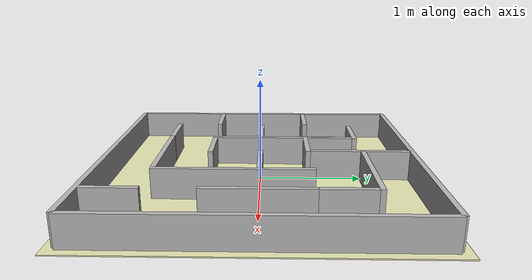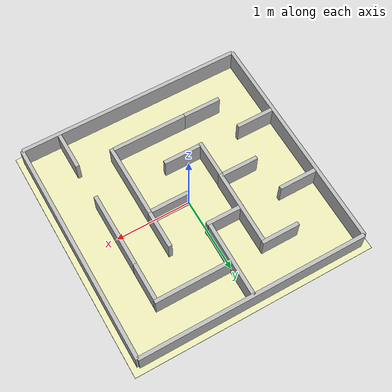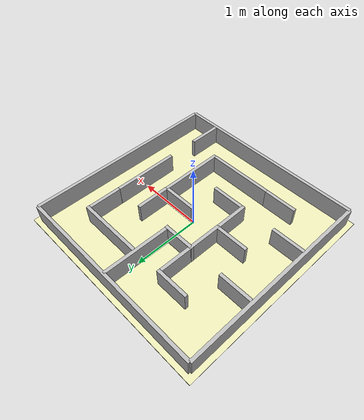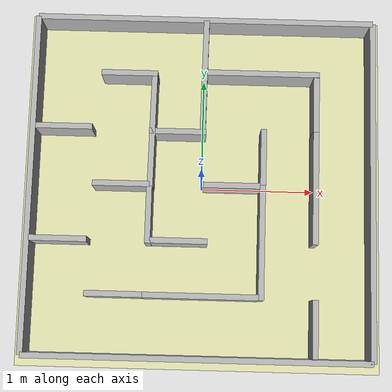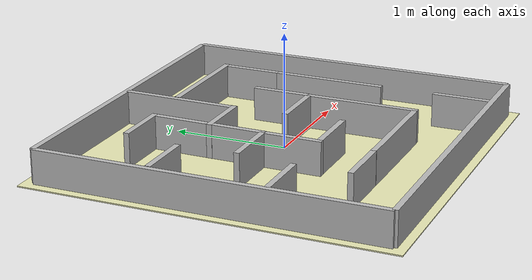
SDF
<sdf version='1.10'>
  <world name='robot_maze'>
    <gravity>0 0 -9.8000000000000007</gravity>
    <magnetic_field>5.5644999999999998e-06 2.2875799999999999e-05 -4.2388400000000002e-05</magnetic_field>
    <atmosphere type='adiabatic'/>
    <physics type='ode'>
      <max_step_size>0.001</max_step_size>
      <real_time_factor>1</real_time_factor>
      <real_time_update_rate>1000</real_time_update_rate>
    </physics>
     <plugin
      filename="gz-sim-physics-system"
      name="gz::sim::systems::Physics">
    </plugin>
    <plugin
      filename="gz-sim-user-commands-system"
      name="gz::sim::systems::UserCommands">
    </plugin>
    <plugin
      filename="gz-sim-scene-broadcaster-system"
      name="gz::sim::systems::SceneBroadcaster">
    </plugin>
    <plugin
      filename="gz-sim-sensors-system"
      name="gz::sim::systems::Sensors">
      <render_engine>ogre2</render_engine>
    </plugin>
    <plugin
      filename="gz-sim-imu-system"
      name="gz::sim::systems::Imu">
    </plugin>
    <scene>
      <ambient>0.400000006 0.400000006 0.400000006 1</ambient>
      <background>0.699999988 0.699999988 0.699999988 1</background>
      <shadows>true</shadows>
    </scene>
    <model name='ground'>
      <static>true</static>
      <pose>0 0 0 0 0 0</pose>
      <link name='link'>
        <collision name='c'>
          <geometry>
            <box>
              <size>3.2000000000000002 3.2000000000000002 0.01</size>
            </box>
          </geometry>
          <surface>
            <friction>
              <ode/>
            </friction>
            <bounce/>
            <contact/>
          </surface>
        </collision>
        <visual name='v'>
          <geometry>
            <box>
              <size>3.2000000000000002 3.2000000000000002 0.01</size>
            </box>
          </geometry>
          <material>
            <diffuse>0.899999976 0.899999976 0.699999988 1</diffuse>
          </material>
        </visual>
        <pose>0 0 0 0 0 0</pose>
        <inertial>
          <pose>0 0 0 0 0 0</pose>
          <mass>1</mass>
          <inertia>
            <ixx>1</ixx>
            <ixy>0</ixy>
            <ixz>0</ixz>
            <iyy>1</iyy>
            <iyz>0</iyz>
            <izz>1</izz>
          </inertia>
        </inertial>
        <enable_wind>false</enable_wind>
      </link>
      <self_collide>false</self_collide>
    </model>
    <model name='border_top'>
      <static>true</static>
      <pose>0 1.5 0.14999999999999999 0 0 0</pose>
      <link name='l'>
        <collision name='c'>
          <geometry>
            <box>
              <size>3 0.050000000000000003 0.29999999999999999</size>
            </box>
          </geometry>
          <surface>
            <friction>
              <ode/>
            </friction>
            <bounce/>
            <contact/>
          </surface>
        </collision>
        <visual name='v'>
          <geometry>
            <box>
              <size>3 0.050000000000000003 0.29999999999999999</size>
            </box>
          </geometry>
        </visual>
        <pose>0 0 0 0 0 0</pose>
        <inertial>
          <pose>0 0 0 0 0 0</pose>
          <mass>1</mass>
          <inertia>
            <ixx>1</ixx>
            <ixy>0</ixy>
            <ixz>0</ixz>
            <iyy>1</iyy>
            <iyz>0</iyz>
            <izz>1</izz>
          </inertia>
        </inertial>
        <enable_wind>false</enable_wind>
      </link>
      <self_collide>false</self_collide>
    </model>
    <model name='border_bottom'>
      <static>true</static>
      <pose>0 -1.5 0.14999999999999999 0 0 0</pose>
      <link name='l'>
        <collision name='c'>
          <geometry>
            <box>
              <size>3 0.050000000000000003 0.29999999999999999</size>
            </box>
          </geometry>
          <surface>
            <friction>
              <ode/>
            </friction>
            <bounce/>
            <contact/>
          </surface>
        </collision>
        <visual name='v'>
          <geometry>
            <box>
              <size>3 0.050000000000000003 0.29999999999999999</size>
            </box>
          </geometry>
        </visual>
        <pose>0 0 0 0 0 0</pose>
        <inertial>
          <pose>0 0 0 0 0 0</pose>
          <mass>1</mass>
          <inertia>
            <ixx>1</ixx>
            <ixy>0</ixy>
            <ixz>0</ixz>
            <iyy>1</iyy>
            <iyz>0</iyz>
            <izz>1</izz>
          </inertia>
        </inertial>
        <enable_wind>false</enable_wind>
      </link>
      <self_collide>false</self_collide>
    </model>
    <model name='border_left'>
      <static>true</static>
      <pose>-1.5 0 0.14999999999999999 0 0 0</pose>
      <link name='l'>
        <collision name='c'>
          <geometry>
            <box>
              <size>0.050000000000000003 3 0.29999999999999999</size>
            </box>
          </geometry>
          <surface>
            <friction>
              <ode/>
            </friction>
            <bounce/>
            <contact/>
          </surface>
        </collision>
        <visual name='v'>
          <geometry>
            <box>
              <size>0.050000000000000003 3 0.29999999999999999</size>
            </box>
          </geometry>
        </visual>
        <pose>0 0 0 0 0 0</pose>
        <inertial>
          <pose>0 0 0 0 0 0</pose>
          <mass>1</mass>
          <inertia>
            <ixx>1</ixx>
            <ixy>0</ixy>
            <ixz>0</ixz>
            <iyy>1</iyy>
            <iyz>0</iyz>
            <izz>1</izz>
          </inertia>
        </inertial>
        <enable_wind>false</enable_wind>
      </link>
      <self_collide>false</self_collide>
    </model>
    <model name='border_right'>
      <static>true</static>
      <pose>1.5 0 0.14999999999999999 0 0 0</pose>
      <link name='l'>
        <collision name='c'>
          <geometry>
            <box>
              <size>0.050000000000000003 3 0.29999999999999999</size>
            </box>
          </geometry>
          <surface>
            <friction>
              <ode/>
            </friction>
            <bounce/>
            <contact/>
          </surface>
        </collision>
        <visual name='v'>
          <geometry>
            <box>
              <size>0.050000000000000003 3 0.29999999999999999</size>
            </box>
          </geometry>
        </visual>
        <pose>0 0 0 0 0 0</pose>
        <inertial>
          <pose>0 0 0 0 0 0</pose>
          <mass>1</mass>
          <inertia>
            <ixx>1</ixx>
            <ixy>0</ixy>
            <ixz>0</ixz>
            <iyy>1</iyy>
            <iyz>0</iyz>
            <izz>1</izz>
          </inertia>
        </inertial>
        <enable_wind>false</enable_wind>
      </link>
      <self_collide>false</self_collide>
    </model>
    <model name='thick_h_row1_1'>
      <static>true</static>
      <pose>-0.44387555122375488 0.47204753756523132 0.15000000596046448 0 0 1.5601799914994563</pose>
      <link name='l'>
        <collision name='c'>
          <geometry>
            <box>
              <size>1 0.050000000000000003 0.29999999999999999</size>
            </box>
          </geometry>
          <surface>
            <friction>
              <ode/>
            </friction>
            <bounce/>
            <contact/>
          </surface>
        </collision>
        <visual name='v'>
          <geometry>
            <box>
              <size>1 0.050000000000000003 0.29999999999999999</size>
            </box>
          </geometry>
        </visual>
        <pose>0 0 0 0 0 0</pose>
        <inertial>
          <pose>0 0 0 0 0 0</pose>
          <mass>1</mass>
          <inertia>
            <ixx>1</ixx>
            <ixy>0</ixy>
            <ixz>0</ixz>
            <iyy>1</iyy>
            <iyz>0</iyz>
            <izz>1</izz>
          </inertia>
        </inertial>
        <enable_wind>false</enable_wind>
      </link>
      <self_collide>false</self_collide>
    </model>
    <model name='thick_h_row2_1'>
      <static>true</static>
      <pose>-1.2252000570297241 0.49515840411186218 0.15272299945354462 0 0 0</pose>
      <link name='l'>
        <collision name='c'>
          <geometry>
            <box>
              <size>0.5 0.050000000000000003 0.29999999999999999</size>
            </box>
          </geometry>
          <surface>
            <friction>
              <ode/>
            </friction>
            <bounce/>
            <contact/>
          </surface>
        </collision>
        <visual name='v'>
          <geometry>
            <box>
              <size>0.5 0.050000000000000003 0.29999999999999999</size>
            </box>
          </geometry>
        </visual>
        <pose>0 0 0 0 0 0</pose>
        <inertial>
          <pose>0 0 0 0 0 0</pose>
          <mass>1</mass>
          <inertia>
            <ixx>1</ixx>
            <ixy>0</ixy>
            <ixz>0</ixz>
            <iyy>1</iyy>
            <iyz>0</iyz>
            <izz>1</izz>
          </inertia>
        </inertial>
        <enable_wind>false</enable_wind>
      </link>
      <self_collide>false</self_collide>
    </model>
    <model name='thick_h_row2_2'>
      <static>true</static>
      <pose>0.26507300138473511 0 0.15000000596046448 0 0 0</pose>
      <link name='l'>
        <collision name='c'>
          <geometry>
            <box>
              <size>0.5 0.050000000000000003 0.29999999999999999</size>
            </box>
          </geometry>
          <surface>
            <friction>
              <ode/>
            </friction>
            <bounce/>
            <contact/>
          </surface>
        </collision>
        <visual name='v'>
          <geometry>
            <box>
              <size>0.5 0.050000000000000003 0.29999999999999999</size>
            </box>
          </geometry>
        </visual>
        <pose>0 0 0 0 0 0</pose>
        <inertial>
          <pose>0 0 0 0 0 0</pose>
          <mass>1</mass>
          <inertia>
            <ixx>1</ixx>
            <ixy>0</ixy>
            <ixz>0</ixz>
            <iyy>1</iyy>
            <iyz>0</iyz>
            <izz>1</izz>
          </inertia>
        </inertial>
        <enable_wind>false</enable_wind>
      </link>
      <self_collide>false</self_collide>
    </model>
    <model name='thick_h_row2_3'>
      <static>true</static>
      <pose>0.52709227800369263 1.0151799917221069 0.15212300419807434 0 0 0</pose>
      <link name='l'>
        <collision name='c'>
          <geometry>
            <box>
              <size>1 0.050000000000000003 0.29999999999999999</size>
            </box>
          </geometry>
          <surface>
            <friction>
              <ode/>
            </friction>
            <bounce/>
            <contact/>
          </surface>
        </collision>
        <visual name='v'>
          <geometry>
            <box>
              <size>1 0.050000000000000003 0.29999999999999999</size>
            </box>
          </geometry>
        </visual>
        <pose>0 0 0 0 0 0</pose>
        <inertial>
          <pose>0 0 0 0 0 0</pose>
          <mass>1</mass>
          <inertia>
            <ixx>1</ixx>
            <ixy>0</ixy>
            <ixz>0</ixz>
            <iyy>1</iyy>
            <iyz>0</iyz>
            <izz>1</izz>
          </inertia>
        </inertial>
        <enable_wind>false</enable_wind>
      </link>
      <self_collide>false</self_collide>
    </model>
    <model name='thick_h_row3_1'>
      <static>true</static>
      <pose>-1.2310700416564941 -0.50015544891357422 0.15000000596046448 0 0 0</pose>
      <link name='l'>
        <collision name='c'>
          <geometry>
            <box>
              <size>0.5 0.050000000000000003 0.29999999999999999</size>
            </box>
          </geometry>
          <surface>
            <friction>
              <ode/>
            </friction>
            <bounce/>
            <contact/>
          </surface>
        </collision>
        <visual name='v'>
          <geometry>
            <box>
              <size>0.5 0.050000000000000003 0.29999999999999999</size>
            </box>
          </geometry>
        </visual>
        <pose>0 0 0 0 0 0</pose>
        <inertial>
          <pose>0 0 0 0 0 0</pose>
          <mass>1</mass>
          <inertia>
            <ixx>1</ixx>
            <ixy>0</ixy>
            <ixz>0</ixz>
            <iyy>1</iyy>
            <iyz>0</iyz>
            <izz>1</izz>
          </inertia>
        </inertial>
        <enable_wind>false</enable_wind>
      </link>
      <self_collide>false</self_collide>
    </model>
    <model name='thick_h_row3_2'>
      <static>true</static>
      <pose>-0.73154598474502563 -0.96555465459823608 0.15000000596046448 0 0 0</pose>
      <link name='l'>
        <collision name='c'>
          <geometry>
            <box>
              <size>0.5 0.050000000000000003 0.29999999999999999</size>
            </box>
          </geometry>
          <surface>
            <friction>
              <ode/>
            </friction>
            <bounce/>
            <contact/>
          </surface>
        </collision>
        <visual name='v'>
          <geometry>
            <box>
              <size>0.5 0.050000000000000003 0.29999999999999999</size>
            </box>
          </geometry>
        </visual>
        <pose>0 0 0 0 0 0</pose>
        <inertial>
          <pose>0 0 0 0 0 0</pose>
          <mass>1</mass>
          <inertia>
            <ixx>1</ixx>
            <ixy>0</ixy>
            <ixz>0</ixz>
            <iyy>1</iyy>
            <iyz>0</iyz>
            <izz>1</izz>
          </inertia>
        </inertial>
        <enable_wind>false</enable_wind>
      </link>
      <self_collide>false</self_collide>
    </model>
    <model name='thick_h_row3_3'>
      <static>true</static>
      <pose>0.015292800031602383 -0.9667743444442749 0.15000000596046448 0 0 0</pose>
      <link name='l'>
        <collision name='c'>
          <geometry>
            <box>
              <size>1 0.050000000000000003 0.29999999999999999</size>
            </box>
          </geometry>
          <surface>
            <friction>
              <ode/>
            </friction>
            <bounce/>
            <contact/>
          </surface>
        </collision>
        <visual name='v'>
          <geometry>
            <box>
              <size>1 0.050000000000000003 0.29999999999999999</size>
            </box>
          </geometry>
        </visual>
        <pose>0 0 0 0 0 0</pose>
        <inertial>
          <pose>0 0 0 0 0 0</pose>
          <mass>1</mass>
          <inertia>
            <ixx>1</ixx>
            <ixy>0</ixy>
            <ixz>0</ixz>
            <iyy>1</iyy>
            <iyz>0</iyz>
            <izz>1</izz>
          </inertia>
        </inertial>
        <enable_wind>false</enable_wind>
      </link>
      <self_collide>false</self_collide>
    </model>
    <model name='thick_v_col1_1'>
      <static>true</static>
      <pose>1.0040348768234253 -1.2235627174377441 0.15000000596046448 0 0 1.5708000357176291</pose>
      <link name='l'>
        <collision name='c'>
          <geometry>
            <box>
              <size>0.5 0.050000000000000003 0.29999999999999999</size>
            </box>
          </geometry>
          <surface>
            <friction>
              <ode/>
            </friction>
            <bounce/>
            <contact/>
          </surface>
        </collision>
        <visual name='v'>
          <geometry>
            <box>
              <size>0.5 0.050000000000000003 0.29999999999999999</size>
            </box>
          </geometry>
        </visual>
        <pose>0 0 0 0 0 0</pose>
        <inertial>
          <pose>0 0 0 0 0 0</pose>
          <mass>1</mass>
          <inertia>
            <ixx>1</ixx>
            <ixy>0</ixy>
            <ixz>0</ixz>
            <iyy>1</iyy>
            <iyz>0</iyz>
            <izz>1</izz>
          </inertia>
        </inertial>
        <enable_wind>false</enable_wind>
      </link>
      <self_collide>false</self_collide>
    </model>
    <model name='thick_v_col4_2'>
      <static>true</static>
      <pose>0.53704899549484253 -0.48850589990615845 0.14808499813079834 0 0 1.5708000357176291</pose>
      <link name='l'>
        <collision name='c'>
          <geometry>
            <box>
              <size>1 0.050000000000000003 0.29999999999999999</size>
            </box>
          </geometry>
          <surface>
            <friction>
              <ode/>
            </friction>
            <bounce/>
            <contact/>
          </surface>
        </collision>
        <visual name='v'>
          <geometry>
            <box>
              <size>1 0.050000000000000003 0.29999999999999999</size>
            </box>
          </geometry>
        </visual>
        <pose>0 0 0 0 0 0</pose>
        <inertial>
          <pose>0 0 0 0 0 0</pose>
          <mass>1</mass>
          <inertia>
            <ixx>1</ixx>
            <ixy>0</ixy>
            <ixz>0</ixz>
            <iyy>1</iyy>
            <iyz>0</iyz>
            <izz>1</izz>
          </inertia>
        </inertial>
        <enable_wind>false</enable_wind>
      </link>
      <self_collide>false</self_collide>
    </model>
    <model name='thick_v_col5_1'>
      <static>true</static>
      <pose>1 0 0.14999999999999999 0 0 1.5708000000000009</pose>
      <link name='l'>
        <collision name='c'>
          <geometry>
            <box>
              <size>1 0.050000000000000003 0.29999999999999999</size>
            </box>
          </geometry>
          <surface>
            <friction>
              <ode/>
            </friction>
            <bounce/>
            <contact/>
          </surface>
        </collision>
        <visual name='v'>
          <geometry>
            <box>
              <size>1 0.050000000000000003 0.29999999999999999</size>
            </box>
          </geometry>
        </visual>
        <pose>0 0 0 0 0 0</pose>
        <inertial>
          <pose>0 0 0 0 0 0</pose>
          <mass>1</mass>
          <inertia>
            <ixx>1</ixx>
            <ixy>0</ixy>
            <ixz>0</ixz>
            <iyy>1</iyy>
            <iyz>0</iyz>
            <izz>1</izz>
          </inertia>
        </inertial>
        <enable_wind>false</enable_wind>
      </link>
      <self_collide>false</self_collide>
    </model>
    <model name='thick_v_col1_1_1'>
      <static>true</static>
      <pose>1.0008899622520571 0.74581676387092877 0.15000000596046448 0 0 1.5708000357176291</pose>
      <link name='l'>
        <collision name='c'>
          <geometry>
            <box>
              <size>0.5 0.050000000000000003 0.29999999999999999</size>
            </box>
          </geometry>
          <surface>
            <friction>
              <ode/>
            </friction>
            <bounce/>
            <contact/>
          </surface>
        </collision>
        <visual name='v'>
          <geometry>
            <box>
              <size>0.5 0.050000000000000003 0.29999999999999999</size>
            </box>
          </geometry>
        </visual>
        <pose>0 0 0 0 0 0</pose>
        <inertial>
          <pose>0 0 0 0 0 0</pose>
          <mass>1</mass>
          <inertia>
            <ixx>1</ixx>
            <ixy>0</ixy>
            <ixz>0</ixz>
            <iyy>1</iyy>
            <iyz>0</iyz>
            <izz>1</izz>
          </inertia>
        </inertial>
        <enable_wind>false</enable_wind>
      </link>
      <self_collide>false</self_collide>
    </model>
    <model name='thick_h_row1_1_1'>
      <static>true</static>
      <pose>0.0051415308339127774 0.99547731607604806 0.15000000596046448 0 0 1.5601799914994563</pose>
      <link name='l'>
        <collision name='c'>
          <geometry>
            <box>
              <size>1 0.050000000000000003 0.29999999999999999</size>
            </box>
          </geometry>
          <surface>
            <friction>
              <ode/>
            </friction>
            <bounce/>
            <contact/>
          </surface>
        </collision>
        <visual name='v'>
          <geometry>
            <box>
              <size>1 0.050000000000000003 0.29999999999999999</size>
            </box>
          </geometry>
        </visual>
        <pose>0 0 0 0 0 0</pose>
        <inertial>
          <pose>0 0 0 0 0 0</pose>
          <mass>1</mass>
          <inertia>
            <ixx>1</ixx>
            <ixy>0</ixy>
            <ixz>0</ixz>
            <iyy>1</iyy>
            <iyz>0</iyz>
            <izz>1</izz>
          </inertia>
        </inertial>
        <enable_wind>false</enable_wind>
      </link>
      <self_collide>false</self_collide>
    </model>
    <model name='thick_v_col1_1_2'>
      <static>true</static>
      <pose>0.53975986912037999 0.26065254099282564 0.15000000596046448 0 0 1.5708000357176291</pose>
      <link name='l'>
        <collision name='c'>
          <geometry>
            <box>
              <size>0.5 0.050000000000000003 0.29999999999999999</size>
            </box>
          </geometry>
          <surface>
            <friction>
              <ode/>
            </friction>
            <bounce/>
            <contact/>
          </surface>
        </collision>
        <visual name='v'>
          <geometry>
            <box>
              <size>0.5 0.050000000000000003 0.29999999999999999</size>
            </box>
          </geometry>
        </visual>
        <pose>0 0 0 0 0 0</pose>
        <inertial>
          <pose>0 0 0 0 0 0</pose>
          <mass>1</mass>
          <inertia>
            <ixx>1</ixx>
            <ixy>0</ixy>
            <ixz>0</ixz>
            <iyy>1</iyy>
            <iyz>0</iyz>
            <izz>1</izz>
          </inertia>
        </inertial>
        <enable_wind>false</enable_wind>
      </link>
      <self_collide>false</self_collide>
    </model>
    <model name='thick_h_row2_2_1'>
      <static>true</static>
      <pose>-0.70343121740316827 -0.0046335596698490328 0.15000000596046448 0 0 0</pose>
      <link name='l'>
        <collision name='c'>
          <geometry>
            <box>
              <size>0.5 0.050000000000000003 0.29999999999999999</size>
            </box>
          </geometry>
          <surface>
            <friction>
              <ode/>
            </friction>
            <bounce/>
            <contact/>
          </surface>
        </collision>
        <visual name='v'>
          <geometry>
            <box>
              <size>0.5 0.050000000000000003 0.29999999999999999</size>
            </box>
          </geometry>
        </visual>
        <pose>0 0 0 0 0 0</pose>
        <inertial>
          <pose>0 0 0 0 0 0</pose>
          <mass>1</mass>
          <inertia>
            <ixx>1</ixx>
            <ixy>0</ixy>
            <ixz>0</ixz>
            <iyy>1</iyy>
            <iyz>0</iyz>
            <izz>1</izz>
          </inertia>
        </inertial>
        <enable_wind>false</enable_wind>
      </link>
      <self_collide>false</self_collide>
    </model>
    <model name='thick_h_row2_2_1_1'>
      <static>true</static>
      <pose>-0.66247940355369106 0.99416118424305344 0.15000000596046448 0 0 0</pose>
      <link name='l'>
        <collision name='c'>
          <geometry>
            <box>
              <size>0.5 0.050000000000000003 0.29999999999999999</size>
            </box>
          </geometry>
          <surface>
            <friction>
              <ode/>
            </friction>
            <bounce/>
            <contact/>
          </surface>
        </collision>
        <visual name='v'>
          <geometry>
            <box>
              <size>0.5 0.050000000000000003 0.29999999999999999</size>
            </box>
          </geometry>
        </visual>
        <pose>0 0 0 0 0 0</pose>
        <inertial>
          <pose>0 0 0 0 0 0</pose>
          <mass>1</mass>
          <inertia>
            <ixx>1</ixx>
            <ixy>0</ixy>
            <ixz>0</ixz>
            <iyy>1</iyy>
            <iyz>0</iyz>
            <izz>1</izz>
          </inertia>
        </inertial>
        <enable_wind>false</enable_wind>
      </link>
      <self_collide>false</self_collide>
    </model>
    <model name='thick_h_row2_2_1_1_1'>
      <static>true</static>
      <pose>-0.22027082963726985 0.47112813285259947 0.15000000596046448 0 0 0</pose>
      <link name='l'>
        <collision name='c'>
          <geometry>
            <box>
              <size>0.5 0.050000000000000003 0.29999999999999999</size>
            </box>
          </geometry>
          <surface>
            <friction>
              <ode/>
            </friction>
            <bounce/>
            <contact/>
          </surface>
        </collision>
        <visual name='v'>
          <geometry>
            <box>
              <size>0.5 0.050000000000000003 0.29999999999999999</size>
            </box>
          </geometry>
        </visual>
        <pose>0 0 0 0 0 0</pose>
        <inertial>
          <pose>0 0 0 0 0 0</pose>
          <mass>1</mass>
          <inertia>
            <ixx>1</ixx>
            <ixy>0</ixy>
            <ixz>0</ixz>
            <iyy>1</iyy>
            <iyz>0</iyz>
            <izz>1</izz>
          </inertia>
        </inertial>
        <enable_wind>false</enable_wind>
      </link>
      <self_collide>false</self_collide>
    </model>
    <model name='thick_v_col1_1_3'>
      <static>true</static>
      <pose>-0.45357330223242509 -0.27204762201496618 0.15000000596046448 0 0 1.5708000357176291</pose>
      <link name='l'>
        <collision name='c'>
          <geometry>
            <box>
              <size>0.5 0.050000000000000003 0.29999999999999999</size>
            </box>
          </geometry>
          <surface>
            <friction>
              <ode/>
            </friction>
            <bounce/>
            <contact/>
          </surface>
        </collision>
        <visual name='v'>
          <geometry>
            <box>
              <size>0.5 0.050000000000000003 0.29999999999999999</size>
            </box>
          </geometry>
        </visual>
        <pose>0 0 0 0 0 0</pose>
        <inertial>
          <pose>0 0 0 0 0 0</pose>
          <mass>1</mass>
          <inertia>
            <ixx>1</ixx>
            <ixy>0</ixy>
            <ixz>0</ixz>
            <iyy>1</iyy>
            <iyz>0</iyz>
            <izz>1</izz>
          </inertia>
        </inertial>
        <enable_wind>false</enable_wind>
      </link>
      <self_collide>false</self_collide>
    </model>
    <model name='thick_h_row2_2_2'>
      <static>true</static>
      <pose>-0.18590285607081647 -0.49556799148648095 0.15000000596046448 0 0 0</pose>
      <link name='l'>
        <collision name='c'>
          <geometry>
            <box>
              <size>0.5 0.050000000000000003 0.29999999999999999</size>
            </box>
          </geometry>
          <surface>
            <friction>
              <ode/>
            </friction>
            <bounce/>
            <contact/>
          </surface>
        </collision>
        <visual name='v'>
          <geometry>
            <box>
              <size>0.5 0.050000000000000003 0.29999999999999999</size>
            </box>
          </geometry>
        </visual>
        <pose>0 0 0 0 0 0</pose>
        <inertial>
          <pose>0 0 0 0 0 0</pose>
          <mass>1</mass>
          <inertia>
            <ixx>1</ixx>
            <ixy>0</ixy>
            <ixz>0</ixz>
            <iyy>1</iyy>
            <iyz>0</iyz>
            <izz>1</izz>
          </inertia>
        </inertial>
        <enable_wind>false</enable_wind>
      </link>
      <self_collide>false</self_collide>
    </model>
    <light name='sun' type='directional'>
      <pose>0 0 10 0 0 0</pose>
      <cast_shadows>true</cast_shadows>
      <intensity>1</intensity>
      <direction>-0.5 0.5 -1</direction>
      <diffuse>1 1 1 1</diffuse>
      <specular>0.100000001 0.100000001 0.100000001 1</specular>
      <attenuation>
        <range>10</range>
        <linear>1</linear>
        <constant>1</constant>
        <quadratic>0</quadratic>
      </attenuation>
      <spot>
        <inner_angle>0</inner_angle>
        <outer_angle>0</outer_angle>
        <falloff>0</falloff>
      </spot>
    </light>
  </world>
</sdf>
